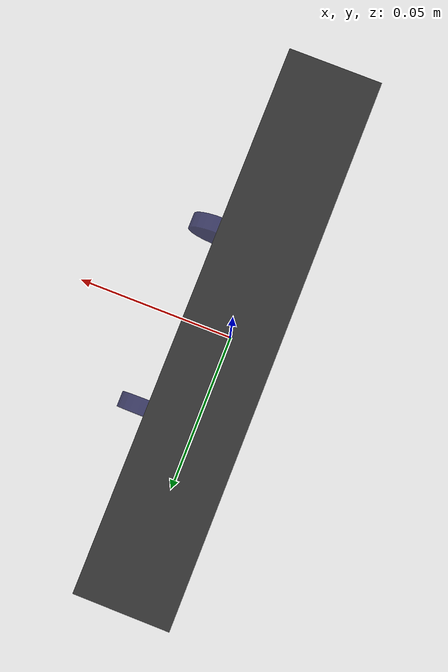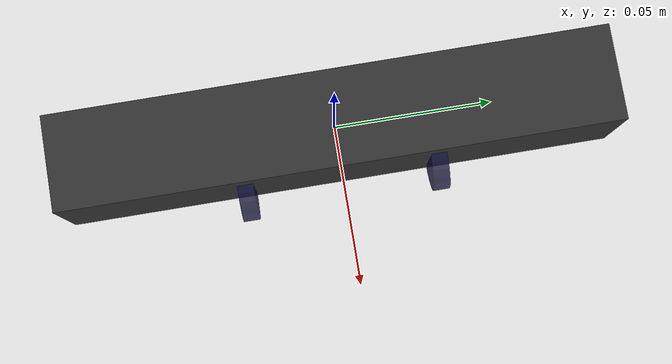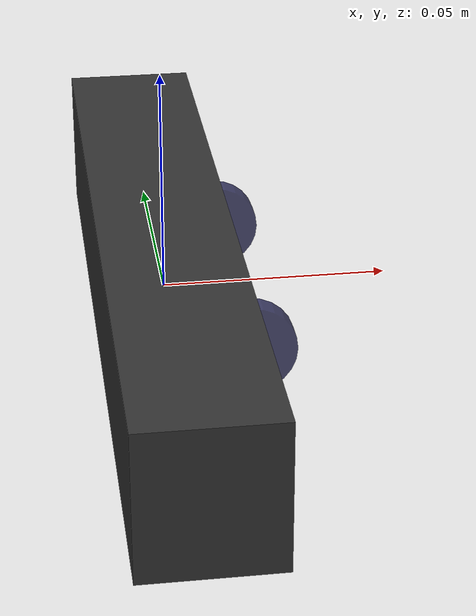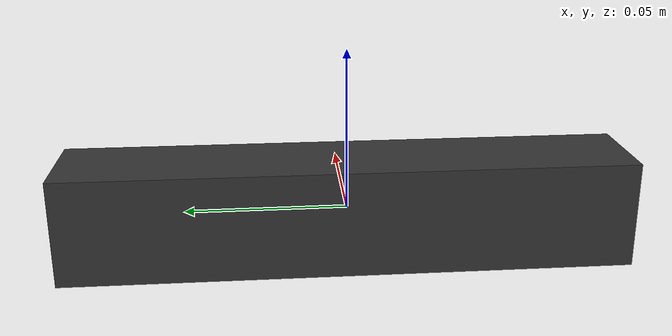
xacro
<?xml version="1.0"?>

<robot xmlns:xacro="http://ros.org/wiki/xacro">

  <link name="zed_camera_link">

    <visual name="visual_zed_camera_body">
      <origin xyz="0.0 0.0 0.0" rpy="0 0 0"/>
      <geometry>
        <!-- ZED 1.0 fiziksel g?vdesi: 175 mm geni?lik, 30 mm derinlik, 33 mm y?kseklik -->
        <box size="0.030 0.175 0.033"/>
      </geometry>
      <material name="zed_dark_grey">
        <color rgba="0.2 0.2 0.2 1.0"/>
      </material>
    </visual>

    <!--
      Sol Lens Dairesi ? sadece g?rsel
    -->
    <visual name="visual_zed_lens_left">
      <origin xyz="0.015 0.030 0.0" rpy="1.5707963 0.0 0.0"/>
      <geometry>
        <cylinder length="0.005" radius="0.010"/>
      </geometry>
      <material name="zed_lens_glass">
        <color rgba="0.1 0.1 0.3 0.8"/>
      </material>
    </visual>

    <!--
      Sa? Lens Dairesi ? sadece g?rsel
      Not: baseline=0.12 m ? sol lens +0.06 m, sa? lens -0.06 m Y ekseninde
    -->
    <visual name="visual_zed_lens_right">
      <origin xyz="0.015 -0.030 0.0" rpy="1.5707963 0.0 0.0"/>
      <geometry>
        <cylinder length="0.005" radius="0.010"/>
      </geometry>
      <material name="zed_lens_glass">
        <color rgba="0.1 0.1 0.3 0.8"/>
      </material>
    </visual>

    <!-- ?arp??ma Alan?: ZED 1.0 g?vde kutusu -->
    <collision name="collision_zed_camera">
      <origin xyz="0.0 0.0 0.0" rpy="0 0 0"/>
      <geometry>
        <box size="0.033 0.175 0.033"/>
      </geometry>
    </collision>

    <inertial>
      <origin xyz="0.0 0.0 0.0" rpy="0 0 0"/>
      <mass value="0.16"/>
      <inertia
        ixx="0.000422" ixy="0.0" ixz="0.0"
        iyy="0.0000265" iyz="0.0"
        izz="0.000420"/>
    </inertial>

  </link>

  <link name="zed_camera_optical_frame">
    <!-- Optik frame k?tlesiz ve geometrisiz bir referans ?er?evesidir -->
  </link>

  <!--
    Optik Frame Joint'i:
    zed_camera_link ? zed_camera_optical_frame
    rpy = (-?/2, 0, -?/2) ile Gazebo'dan OpenCV koordinat sistemine ge?i?.
  -->
  <joint name="zed_camera_link_to_optical_frame" type="fixed">
    <origin xyz="0.0 0.0 0.0" rpy="-1.5707963267948966 0.0 -1.5707963267948966"/>
    <parent link="zed_camera_link"/>
    <child  link="zed_camera_optical_frame"/>
  </joint>

  <gazebo reference="zed_camera_link">

    <sensor name="sensor_zed_camera" type="rgbd_camera">

      <!-- ?? Ignition Topic Adlar? ????????????????????????
           Bu topic'ler ros_gz_bridge arac?l???yla ROS 2'ye k?pr?lenir.
           K?pr? yap?land?rmas? i?in bkz. dosya ba??ndaki tablo.
      -->
      <topic>/roboboat/sensors/camera/image</topic>

      <!-- G?r?nt? her zaman yay?nlan?r (g?? tasarruf modu yok) -->
      <always_on>true</always_on>

      <!-- Sim?lasyonda g?rselle?tirme etkin (RViz ile g?r?nt?leme i?in) -->
      <visualize>true</visualize>

      <!-- ZED 1.0 nominal FPS = 30 Hz (720p modunda) -->
      <update_rate>30</update_rate>

      <!-- Sens?r? zed_camera_optical_frame'e referansla -->
      <gz_frame_id>zed_camera_optical_frame</gz_frame_id>

      <camera name="zed_1_camera">

        <image>
          <width>1280</width>
          <height>720</height>
          <!-- R8G8B8: 8-bit/kanal, sensorMsg/Image encoding="rgb8" -->
          <format>R8G8B8</format>
        </image>

        <!-- ?? G?r?? A??s? (Field of View) ?????????????
             ZED 1.0 @ 720p: Yatay FOV = 110? = 1.91986 rad
             Kaynak: Stereolabs resmi datasheet
        -->
        <horizontal_fov>1.91986</horizontal_fov>

        <clip>
          <near>0.5</near>
          <far>20.0</far>
        </clip>

        <depth_camera>
          <output>depths</output>
          <!-- Derinlik g?r?nt?s? i?in yak?n/uzak s?n?rlar -->
          <clip>
            <near>0.5</near>
            <far>20.0</far>
          </clip>
        </depth_camera>

        <!-- ?? G?r?nt? G?r?lt?s? (Noise) ?????????????????
             ZED 1.0 tipik RGB kamera g?r?lt?s? modeli:
             Gaussian g?r?lt?, stddev=0.007 (27/255 ? %1)
        -->
        <noise>
          <type>gaussian</type>
          <mean>0.0</mean>
          <stddev>0.007</stddev>
        </noise>

        <distortion>
          <k1>0.0</k1>
          <k2>0.0</k2>
          <k3>0.0</k3>
          <p1>0.0</p1>
          <p2>0.0</p2>
          <center>0.5 0.5</center>
        </distortion>

        <!-- ?? Lens ?zellikleri ??????????????????????????
             ZED 1.0 lens tipi: Pinhole (ideal, bozulmas?z model)
             Ger?ek lens bozulmas? ihmal edilir (ZED SDK d?zeltir).
        -->
        <lens>
          <type>stereographic</type>
          <scale_to_hfov>true</scale_to_hfov>
        </lens>

      </camera>

    </sensor>

  </gazebo>

</robot>
